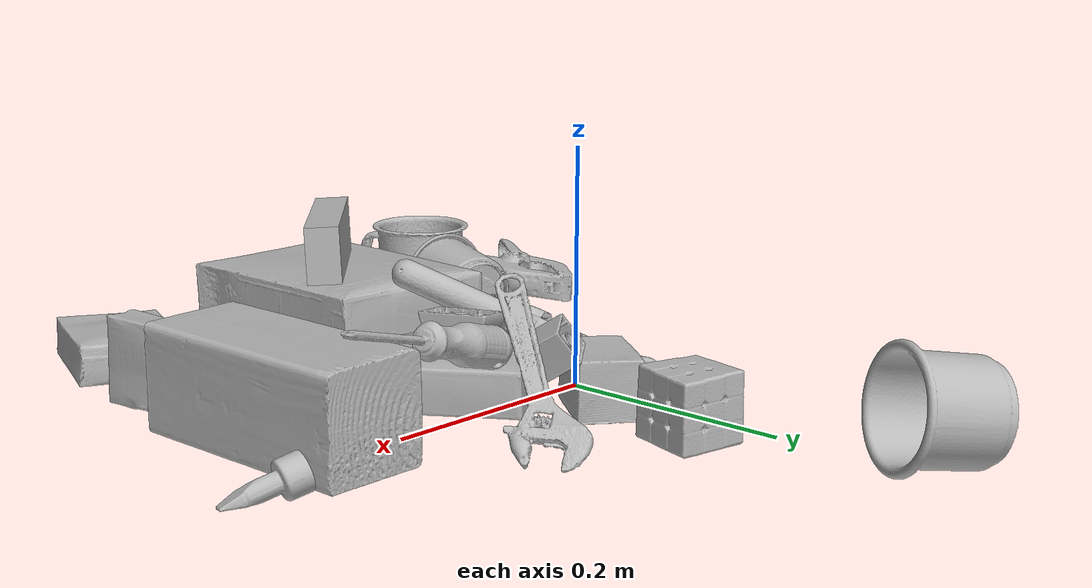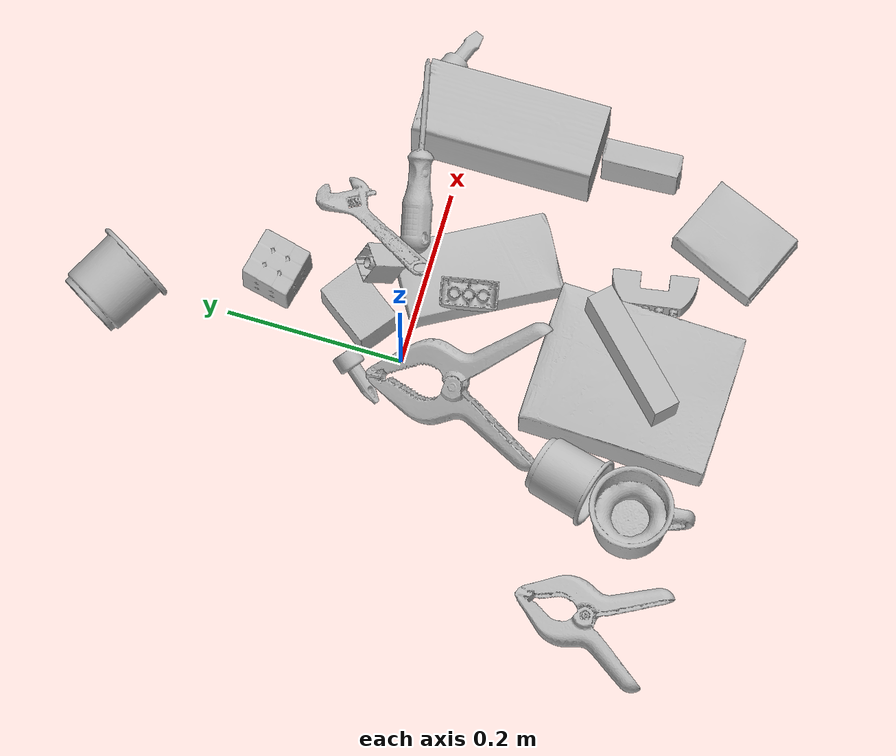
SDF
<sdf version="1.4">
  <world name="default">
    <light name="light1" type="point">
      <pose>0 0 1 0 0 0</pose>
      <diffuse>3 3 3 1</diffuse>
      <specular>3 3 3 1</specular>
    </light>
    <light name="light2" type="point">
      <pose>0 0.5 2 0 0 0</pose>
      <diffuse>1 1 1 1</diffuse>
      <specular>1 1 1 1</specular>
    </light>
    <light name="light3" type="point">
      <pose>0 0.5 2 0 0 0</pose>
      <diffuse>3 3 3 1</diffuse>
      <specular>3 3 3 1</specular>
    </light>
    <scene>
      <ambient>0.7 0.7 0.7</ambient>
    </scene>
    <model name="box21">
      <link name="link_box21">
        <collision name="default">
          <geometry>
            <mesh>
              <uri>model://cracker_box/collision_meshes/collision.obj</uri>
              <scale>1.0 1.0 1.0</scale>
            </mesh>
          </geometry>
          <surface>
            <friction>
              <ode>
                <mu>0.5</mu>
                <mu2>0.5</mu2>
              </ode>
            </friction>
          <contact>
        <ode>
            <max_vel>0</max_vel>
            <min_depth>0.0001</min_depth>
            <kp>1e8</kp>
        </ode>
    </contact></surface>
        </collision>
        <visual name="default">
          <geometry>
            <mesh>
              <uri>model://cracker_box/visual_meshes/visual.dae</uri>
              <scale>1.0 1.0 1.0</scale>
            </mesh>
          </geometry>
        </visual>
        <inertial>
          <mass>1.391977071762085</mass>
          <pose>0.0009464159375056624 0.0002543424488976598 -0.0017029533628374338 -0.000316207597302205 -0.011106489600460226 0.002546794768991959</pose>
          <inertia>
            <ixx>0.0035405685</ixx>
            <iyy>0.0058461735</iyy>
            <izz>0.008343027</izz>
            <ixy>0</ixy>
            <ixz>0</ixz>
            <iyz>0</iyz>
          </inertia>
        </inertial>
      </link>
      <pose>0.0364178903400898 -0.2528732717037201 0.03553123399615288 3.137210916732706 -0.016541570861083692 1.544701916396476</pose>
    </model>
    <model name="box22">
      <link name="link_box22">
        <collision name="default">
          <geometry>
            <mesh>
              <uri>model://pudding_box/collision_meshes/collision.obj</uri>
              <scale>1.0 1.0 1.0</scale>
            </mesh>
          </geometry>
          <surface>
            <friction>
              <ode>
                <mu>0.5</mu>
                <mu2>0.5</mu2>
              </ode>
            </friction>
          <contact>
        <ode>
            <max_vel>0</max_vel>
            <min_depth>0.0001</min_depth>
            <kp>1e8</kp>
        </ode>
    </contact></surface>
        </collision>
        <visual name="default">
          <geometry>
            <mesh>
              <uri>model://pudding_box/visual_meshes/visual.dae</uri>
              <scale>1.0 1.0 1.0</scale>
            </mesh>
          </geometry>
        </visual>
        <inertial>
          <mass>0.30066633224487305</mass>
          <pose>0.0004894821904599667 0.0008067885646596551 -0.0005188827635720372 0.005213102250656644 -0.006603798267444238 0.020079828885202117</pose>
          <inertia>
            <ixx>0.0003398878</ixx>
            <iyy>0.00022867892</iyy>
            <izz>0.00050193316</izz>
            <ixy>0</ixy>
            <ixz>0</ixz>
            <iyz>0</iyz>
          </inertia>
        </inertial>
      </link>
      <pose>0.23024065792560577 -0.318114310503006 0.01868600770831108 -3.1415926447382216 -3.580117525311339e-08 2.7326074656759833</pose>
    </model>
    <model name="box23">
      <link name="link_box23">
        <collision name="default">
          <geometry>
            <mesh>
              <uri>model://rubiks_cube/collision_meshes/collision.obj</uri>
              <scale>1.0 1.0 1.0</scale>
            </mesh>
          </geometry>
          <surface>
            <friction>
              <ode>
                <mu>0.5</mu>
                <mu2>0.5</mu2>
              </ode>
            </friction>
          <contact>
        <ode>
            <max_vel>0</max_vel>
            <min_depth>0.0001</min_depth>
            <kp>1e8</kp>
        </ode>
    </contact></surface>
        </collision>
        <visual name="default">
          <geometry>
            <mesh>
              <uri>model://rubiks_cube/visual_meshes/visual.dae</uri>
              <scale>1.0 1.0 1.0</scale>
            </mesh>
          </geometry>
        </visual>
        <inertial>
          <mass>0.26383036375045776</mass>
          <pose>2.6721041649580002e-05 5.256966323941015e-05 -7.264316082000732e-06 -0.054671492146459166 -0.0981403456898064 -0.03445706250673431</pose>
          <inertia>
            <ixx>0.000145784</ixx>
            <iyy>0.00014510413</iyy>
            <izz>0.00014699204</izz>
            <ixy>0</ixy>
            <ixz>0</ixz>
            <iyz>0</iyz>
          </inertia>
        </inertial>
      </link>
      <pose>0.05533124506473541 0.1596636027097702 0.029330067336559296 1.577613796515586 -0.0166782511139051 2.913999324307514</pose>
    </model>
    <model name="cup1">
      <link name="link_cup1">
        <collision name="default">
          <geometry>
            <mesh>
              <uri>model://i_cups/collision_meshes/collision.obj</uri>
              <scale>1.0 1.0 1.0</scale>
            </mesh>
          </geometry>
          <surface>
            <friction>
              <ode>
                <mu>0.5</mu>
                <mu2>0.5</mu2>
              </ode>
            </friction>
          <contact>
        <ode>
            <max_vel>0</max_vel>
            <min_depth>0.0001</min_depth>
            <kp>1e8</kp>
        </ode>
    </contact></surface>
        </collision>
        <visual name="default">
          <geometry>
            <mesh>
              <uri>model://i_cups/visual_meshes/visual.dae</uri>
              <scale>1.0 1.0 1.0</scale>
            </mesh>
          </geometry>
        </visual>
        <inertial>
          <mass>0.07817669957876205</mass>
          <pose>0.00011240140884183347 0.00016797371790744364 -0.0008579030982218683 -0.02898336998566683 -0.039872909189422004 -0.34590568894983</pose>
          <inertia>
            <ixx>0.000108236774</ixx>
            <iyy>0.000109190434</iyy>
            <izz>0.00012097212</izz>
            <ixy>0</ixy>
            <ixz>0</ixz>
            <iyz>0</iyz>
          </inertia>
        </inertial>
      </link>
      <pose>-0.015039605088531971 0.32671064138412476 0.04469998553395271 1.4464089825738973 -0.08497153774589762 1.037316182492207</pose>
    </model>
    <model name="cup2">
      <link name="link_cup2">
        <collision name="default">
          <geometry>
            <mesh>
              <uri>model://f_cups/collision_meshes/collision.obj</uri>
              <scale>1.0 1.0 1.0</scale>
            </mesh>
          </geometry>
          <surface>
            <friction>
              <ode>
                <mu>0.5</mu>
                <mu2>0.5</mu2>
              </ode>
            </friction>
          <contact>
        <ode>
            <max_vel>0</max_vel>
            <min_depth>0.0001</min_depth>
            <kp>1e8</kp>
        </ode>
    </contact></surface>
        </collision>
        <visual name="default">
          <geometry>
            <mesh>
              <uri>model://f_cups/visual_meshes/visual.dae</uri>
              <scale>1.0 1.0 1.0</scale>
            </mesh>
          </geometry>
        </visual>
        <inertial>
          <mass>0.06179655343294144</mass>
          <pose>-0.003171469084918499 -0.0006240077782422304 -0.0036555363330990076 0.786228783809594 -0.26079147583364887 -0.18237327348602217</pose>
          <inertia>
            <ixx>5.8090412e-05</ixx>
            <iyy>6.0937502e-05</iyy>
            <izz>6.3437656e-05</izz>
            <ixy>0</ixy>
            <ixz>0</ixz>
            <iyz>0</iyz>
          </inertia>
        </inertial>
      </link>
      <pose>-0.08426167070865631 -0.21505309641361237 0.03731009364128113 1.0155888198924117 -1.3870470915877142 0.2728729833889232</pose>
    </model>
    <model name="box11">
      <link name="link_box11">
        <collision name="default">
          <geometry>
            <mesh>
              <uri>model://jenga/collision_meshes/collision.obj</uri>
              <scale>1.0 1.0 1.0</scale>
            </mesh>
          </geometry>
          <surface>
            <friction>
              <ode>
                <mu>0.5</mu>
                <mu2>0.5</mu2>
              </ode>
            </friction>
          <contact>
        <ode>
            <max_vel>0</max_vel>
            <min_depth>0.0001</min_depth>
            <kp>1e8</kp>
        </ode>
    </contact></surface>
        </collision>
        <visual name="default">
          <geometry>
            <mesh>
              <uri>model://jenga/visual_meshes/visual.dae</uri>
              <scale>1.0 1.0 1.0</scale>
            </mesh>
          </geometry>
        </visual>
        <inertial>
          <mass>0.2841220796108246</mass>
          <pose>-2.5028555228345795e-07 -0.00010250010382151231 -4.0923401684267446e-05 0.0 -7.34215461761844e-07 0.0</pose>
          <inertia>
            <ixx>7.8623474e-05</ixx>
            <iyy>0.00053275056</iyy>
            <izz>0.0005687565</izz>
            <ixy>0</ixy>
            <ixz>0</ixz>
            <iyz>0</iyz>
          </inertia>
        </inertial>
      </link>
      <pose>0.05251577869057655 -0.24664445221424103 0.09652844071388245 1.6165520459695495 -0.008338370120488702 0.7861251758979365</pose>
    </model>
    <model name="box12">
      <link name="link_box12">
        <collision name="default">
          <geometry>
            <mesh>
              <uri>model://wood_block/collision_meshes/collision.obj</uri>
              <scale>1.0 1.0 1.0</scale>
            </mesh>
          </geometry>
          <surface>
            <friction>
              <ode>
                <mu>0.5</mu>
                <mu2>0.5</mu2>
              </ode>
            </friction>
          <contact>
        <ode>
            <max_vel>0</max_vel>
            <min_depth>0.0001</min_depth>
            <kp>1e8</kp>
        </ode>
    </contact></surface>
        </collision>
        <visual name="default">
          <geometry>
            <mesh>
              <uri>model://wood_block/visual_meshes/visual.dae</uri>
              <scale>1.0 1.0 1.0</scale>
            </mesh>
          </geometry>
        </visual>
        <inertial>
          <mass>1.792885661125183</mass>
          <pose>-5.813315510749817e-06 -0.0005708095268346369 0.0002640858292579651 -0.0522099864925601 -0.005192695938411627 -0.006861379223067069</pose>
          <inertia>
            <ixx>0.0023991528</ixx>
            <iyy>0.007578924</iyy>
            <izz>0.007550574</izz>
            <ixy>0</ixy>
            <ixz>0</ixz>
            <iyz>0</iyz>
          </inertia>
        </inertial>
      </link>
      <pose>0.278642863035202 -0.04415116459131241 0.0442773774266243 -1.5548839989984211 0.004819112781253863 1.5705666006618202</pose>
    </model>
    <model name="box13">
      <link name="link_box13">
        <collision name="default">
          <geometry>
            <mesh>
              <uri>model://sugar_box/collision_meshes/collision.obj</uri>
              <scale>1.0 1.0 1.0</scale>
            </mesh>
          </geometry>
          <surface>
            <friction>
              <ode>
                <mu>0.5</mu>
                <mu2>0.5</mu2>
              </ode>
            </friction>
          <contact>
        <ode>
            <max_vel>0</max_vel>
            <min_depth>0.0001</min_depth>
            <kp>1e8</kp>
        </ode>
    </contact></surface>
        </collision>
        <visual name="default">
          <geometry>
            <mesh>
              <uri>model://sugar_box/visual_meshes/visual.dae</uri>
              <scale>1.0 1.0 1.0</scale>
            </mesh>
          </geometry>
        </visual>
        <inertial>
          <mass>0.8825364708900452</mass>
          <pose>0.0010343727190047503 3.8491099985549226e-05 -0.00036364805418998003 -0.0004046260965456432 0.0010506635219437153 0.002615379021860657</pose>
          <inertia>
            <ixx>0.0007353271</ixx>
            <iyy>0.0023767278</iyy>
            <izz>0.002845227</izz>
            <ixy>0</ixy>
            <ixz>0</ixz>
            <iyz>0</iyz>
          </inertia>
        </inertial>
      </link>
      <pose>0.11850938200950623 -0.053908154368400574 0.022770008072257042 0.011316283970783879 -0.027268599620129133 2.078547035063261</pose>
    </model>
    <model name="box14">
      <link name="link_box14">
        <collision name="default">
          <geometry>
            <mesh>
              <uri>model://gelatin_box/collision_meshes/collision.obj</uri>
              <scale>1.0 1.0 1.0</scale>
            </mesh>
          </geometry>
          <surface>
            <friction>
              <ode>
                <mu>0.5</mu>
                <mu2>0.5</mu2>
              </ode>
            </friction>
          <contact>
        <ode>
            <max_vel>0</max_vel>
            <min_depth>0.0001</min_depth>
            <kp>1e8</kp>
        </ode>
    </contact></surface>
        </collision>
        <visual name="default">
          <geometry>
            <mesh>
              <uri>model://gelatin_box/visual_meshes/visual.dae</uri>
              <scale>1.0 1.0 1.0</scale>
            </mesh>
          </geometry>
        </visual>
        <inertial>
          <mass>0.13771659135818481</mass>
          <pose>0.0004319618456065655 0.00011156871914863586 -0.0003640321083366871 -0.0010503722043797578 -0.004755819155943452 0.016440555746729004</pose>
          <inertia>
            <ixx>9.721668e-05</ixx>
            <iyy>6.944137e-05</iyy>
            <izz>0.00014798543</izz>
            <ixy>0</ixy>
            <ixz>0</ixz>
            <iyz>0</iyz>
          </inertia>
        </inertial>
      </link>
      <pose>0.28184232115745544 -0.19557389616966248 0.03673622012138367 -0.5861787379497332 1.5473939811833437 -0.540118258072216</pose>
    </model>
    <model name="cup15">
      <link name="link_cup15">
        <collision name="default">
          <geometry>
            <mesh>
              <uri>model://mug/collision_meshes/collision.obj</uri>
              <scale>1.0 1.0 1.0</scale>
            </mesh>
          </geometry>
          <surface>
            <friction>
              <ode>
                <mu>0.5</mu>
                <mu2>0.5</mu2>
              </ode>
            </friction>
          <contact>
        <ode>
            <max_vel>0</max_vel>
            <min_depth>0.0001</min_depth>
            <kp>1e8</kp>
        </ode>
    </contact></surface>
        </collision>
        <visual name="default">
          <geometry>
            <mesh>
              <uri>model://mug/visual_meshes/visual.dae</uri>
              <scale>1.0 1.0 1.0</scale>
            </mesh>
          </geometry>
        </visual>
        <inertial>
          <mass>0.09286905825138092</mass>
          <pose>0.009571668691933155 0.0008143252343870699 -0.010947328992187977 -0.12983168029791675 0.08737751579099198 0.05507277032354666</pose>
          <inertia>
            <ixx>9.2248694e-05</ixx>
            <iyy>0.00010303637</iyy>
            <izz>0.00011916295</izz>
            <ixy>0</ixy>
            <ixz>0</ixz>
            <iyz>0</iyz>
          </inertia>
        </inertial>
      </link>
      <pose>-0.10369189083576202 -0.30416339635849 0.040948882699012756 -6.86085310992232e-06 3.50619009008367e-06 1.7473365603612878</pose>
    </model>
    <model name="toy1">
      <link name="link_toy1">
        <collision name="default">
          <geometry>
            <mesh>
              <uri>model://e_toy_airplane/collision_meshes/collision.obj</uri>
              <scale>1.0 1.0 1.0</scale>
            </mesh>
          </geometry>
          <surface>
            <friction>
              <ode>
                <mu>0.5</mu>
                <mu2>0.5</mu2>
              </ode>
            </friction>
          <contact>
        <ode>
            <max_vel>0</max_vel>
            <min_depth>0.0001</min_depth>
            <kp>1e8</kp>
        </ode>
    </contact></surface>
        </collision>
        <visual name="default">
          <geometry>
            <mesh>
              <uri>model://e_toy_airplane/visual_meshes/visual.dae</uri>
              <scale>1.0 1.0 1.0</scale>
            </mesh>
          </geometry>
        </visual>
        <inertial>
          <mass>0.023911256343126297</mass>
          <pose>0.00011740469199139625 -2.2482965505332686e-05 -0.011187205091118813 0.005518515901869279 0.009228280443904262 0.15041685177791278</pose>
          <inertia>
            <ixx>7.297989e-06</ixx>
            <iyy>7.223337e-06</iyy>
            <izz>2.1933329e-06</izz>
            <ixy>0</ixy>
            <ixz>0</ixz>
            <iyz>0</iyz>
          </inertia>
        </inertial>
      </link>
      <pose>0.3606751561164856 0.033527765423059464 0.01086979079991579 3.0028159607120166 1.3103022324889915 2.682977194376757</pose>
    </model>
    <model name="toy2">
      <link name="link_toy2">
        <collision name="default">
          <geometry>
            <mesh>
              <uri>model://e_lego_duplo/collision_meshes/collision.obj</uri>
              <scale>1.0 1.0 1.0</scale>
            </mesh>
          </geometry>
          <surface>
            <friction>
              <ode>
                <mu>0.5</mu>
                <mu2>0.5</mu2>
              </ode>
            </friction>
          <contact>
        <ode>
            <max_vel>0</max_vel>
            <min_depth>0.0001</min_depth>
            <kp>1e8</kp>
        </ode>
    </contact></surface>
        </collision>
        <visual name="default">
          <geometry>
            <mesh>
              <uri>model://e_lego_duplo/visual_meshes/visual.dae</uri>
              <scale>1.0 1.0 1.0</scale>
            </mesh>
          </geometry>
        </visual>
        <inertial>
          <mass>0.11075761169195175</mass>
          <pose>0.00032560486579313874 0.0002348541165702045 0.0019521445501595736 -0.02256776115193108 -6.825012723321977e-05 -0.007625153470106003</pose>
          <inertia>
            <ixx>2.3096625e-05</ixx>
            <iyy>9.479449e-05</iyy>
            <izz>9.231077e-05</izz>
            <ixy>0</ixy>
            <ixz>0</ixz>
            <iyz>0</iyz>
          </inertia>
        </inertial>
      </link>
      <pose>0.14810535311698914 -0.24777469038963318 0.01627941057085991 1.5786393415016227 -0.004768720810685702 -1.406983423367264</pose>
    </model>
    <model name="toy3">
      <link name="link_toy3">
        <collision name="default">
          <geometry>
            <mesh>
              <uri>model://foam_brick/collision_meshes/collision.obj</uri>
              <scale>1.0 1.0 1.0</scale>
            </mesh>
          </geometry>
          <surface>
            <friction>
              <ode>
                <mu>0.5</mu>
                <mu2>0.5</mu2>
              </ode>
            </friction>
          <contact>
        <ode>
            <max_vel>0</max_vel>
            <min_depth>0.0001</min_depth>
            <kp>1e8</kp>
        </ode>
    </contact></surface>
        </collision>
        <visual name="default">
          <geometry>
            <mesh>
              <uri>model://foam_brick/visual_meshes/visual.dae</uri>
              <scale>1.0 1.0 1.0</scale>
            </mesh>
          </geometry>
        </visual>
        <inertial>
          <mass>0.18736568093299866</mass>
          <pose>-0.0002522472059354186 0.0003458441933616996 -0.0002532101352699101 -0.2940186982087205 0.017274432871393446 -0.000744985669109422</pose>
          <inertia>
            <ixx>8.184482e-05</ixx>
            <iyy>0.00013066948</iyy>
            <izz>0.00013233014</izz>
            <ixy>0</ixy>
            <ixz>0</ixz>
            <iyz>0</iyz>
          </inertia>
        </inertial>
      </link>
      <pose>0.038966916501522064 0.05956784263253212 0.02549687772989273 3.1325113845009107 0.006610609076115338 0.9291424853441963</pose>
    </model>
    <model name="toy4">
      <link name="link_toy4">
        <collision name="default">
          <geometry>
            <mesh>
              <uri>model://b_lego_duplo/collision_meshes/collision.obj</uri>
              <scale>1.0 1.0 1.0</scale>
            </mesh>
          </geometry>
          <surface>
            <friction>
              <ode>
                <mu>0.5</mu>
                <mu2>0.5</mu2>
              </ode>
            </friction>
          <contact>
        <ode>
            <max_vel>0</max_vel>
            <min_depth>0.0001</min_depth>
            <kp>1e8</kp>
        </ode>
    </contact></surface>
        </collision>
        <visual name="default">
          <geometry>
            <mesh>
              <uri>model://b_lego_duplo/visual_meshes/visual.dae</uri>
              <scale>1.0 1.0 1.0</scale>
            </mesh>
          </geometry>
        </visual>
        <inertial>
          <mass>0.025353357195854187</mass>
          <pose>-0.00011053043272113428 -9.152237907983363e-06 0.001929429010488093 -0.03749469050897604 -0.02635423063131295 0.4518929125976256</pose>
          <inertia>
            <ixx>5.188755e-06</ixx>
            <iyy>5.223636e-06</iyy>
            <izz>4.623011e-06</izz>
            <ixy>0</ixy>
            <ixz>0</ixz>
            <iyz>0</iyz>
          </inertia>
        </inertial>
      </link>
      <pose>0.08751074224710464 0.047946829348802567 0.05577421188354492 -2.7043537696033253 0.9212306484917441 2.529452963616329</pose>
    </model>
    <model name="toy5">
      <link name="link_toy5">
        <collision name="default">
          <geometry>
            <mesh>
              <uri>model://d_toy_airplane/collision_meshes/collision.obj</uri>
              <scale>1.0 1.0 1.0</scale>
            </mesh>
          </geometry>
          <surface>
            <friction>
              <ode>
                <mu>0.5</mu>
                <mu2>0.5</mu2>
              </ode>
            </friction>
          <contact>
        <ode>
            <max_vel>0</max_vel>
            <min_depth>0.0001</min_depth>
            <kp>1e8</kp>
        </ode>
    </contact></surface>
        </collision>
        <visual name="default">
          <geometry>
            <mesh>
              <uri>model://d_toy_airplane/visual_meshes/visual.dae</uri>
              <scale>1.0 1.0 1.0</scale>
            </mesh>
          </geometry>
        </visual>
        <inertial>
          <mass>0.012228579260408878</mass>
          <pose>9.410289931111038e-05 -5.8093195548281074e-05 -0.011728097684681416 0.00026677116185868234 0.004678984415060646 0.5194210089241819</pose>
          <inertia>
            <ixx>3.6658907e-06</ixx>
            <iyy>3.6686554e-06</iyy>
            <izz>1.1067563e-06</izz>
            <ixy>0</ixy>
            <ixz>0</ixz>
            <iyz>0</iyz>
          </inertia>
        </inertial>
      </link>
      <pose>-0.03307146206498146 0.03707360848784447 0.01136132050305605 -2.301765859575989 1.24761117171831 1.757525687164289</pose>
    </model>
    <model name="toy6">
      <link name="link_toy6">
        <collision name="default">
          <geometry>
            <mesh>
              <uri>model://a_lego_duplo/collision_meshes/collision.obj</uri>
              <scale>1.0 1.0 1.0</scale>
            </mesh>
          </geometry>
          <surface>
            <friction>
              <ode>
                <mu>0.5</mu>
                <mu2>0.5</mu2>
              </ode>
            </friction>
          <contact>
        <ode>
            <max_vel>0</max_vel>
            <min_depth>0.0001</min_depth>
            <kp>1e8</kp>
        </ode>
    </contact></surface>
        </collision>
        <visual name="default">
          <geometry>
            <mesh>
              <uri>model://a_lego_duplo/visual_meshes/visual.dae</uri>
              <scale>1.0 1.0 1.0</scale>
            </mesh>
          </geometry>
        </visual>
        <inertial>
          <mass>0.012199957855045795</mass>
          <pose>-0.00011337617615936324 0.00018517585704103112 0.0003692606114782393 -0.014116995063493705 -0.0001256559143483996 6.140869386576653e-05</pose>
          <inertia>
            <ixx>1.564132e-06</ixx>
            <iyy>3.5039989e-06</iyy>
            <izz>4.340482e-06</izz>
            <ixy>0</ixy>
            <ixz>0</ixz>
            <iyz>0</iyz>
          </inertia>
        </inertial>
      </link>
      <pose>0.07949090749025345 -0.053987178951501846 0.05643202364444733 3.0657665091863127 -0.06202745348570211 1.7691709052312492</pose>
    </model>
    <model name="hardware1">
      <link name="link_hardware1">
        <collision name="default">
          <geometry>
            <mesh>
              <uri>model://phillips_screwdriver/collision_meshes/collision.obj</uri>
              <scale>1.0 1.0 1.0</scale>
            </mesh>
          </geometry>
          <surface>
            <friction>
              <ode>
                <mu>0.5</mu>
                <mu2>0.5</mu2>
              </ode>
            </friction>
          <contact>
        <ode>
            <max_vel>0</max_vel>
            <min_depth>0.0001</min_depth>
            <kp>1e8</kp>
        </ode>
    </contact></surface>
        </collision>
        <visual name="default">
          <geometry>
            <mesh>
              <uri>model://phillips_screwdriver/visual_meshes/visual.dae</uri>
              <scale>1.0 1.0 1.0</scale>
            </mesh>
          </geometry>
        </visual>
        <inertial>
          <mass>0.06495495140552521</mass>
          <pose>-0.04777183011174202 0.0010362302418798208 -0.00045555501128546894 -0.1571888451297522 0.005850998841919991 -0.0021567342335393844</pose>
          <inertia>
            <ixx>7.63154e-06</ixx>
            <iyy>9.568614e-05</iyy>
            <izz>9.576745e-05</izz>
            <ixy>0</ixy>
            <ixz>0</ixz>
            <iyz>0</iyz>
          </inertia>
        </inertial>
      </link>
      <pose>0.2067268043756485 0.03829881548881531 0.08349188417196274 2.1854993406209804 -0.27120072184157884 0.20879668271981378</pose>
    </model>
    <model name="hardware2">
      <link name="link_hardware2">
        <collision name="default">
          <geometry>
            <mesh>
              <uri>model://extra_large_clamp/collision_meshes/collision.obj</uri>
              <scale>1.0 1.0 1.0</scale>
            </mesh>
          </geometry>
          <surface>
            <friction>
              <ode>
                <mu>0.5</mu>
                <mu2>0.5</mu2>
              </ode>
            </friction>
          <contact>
        <ode>
            <max_vel>0</max_vel>
            <min_depth>0.0001</min_depth>
            <kp>1e8</kp>
        </ode>
    </contact></surface>
        </collision>
        <visual name="default">
          <geometry>
            <mesh>
              <uri>model://extra_large_clamp/visual_meshes/visual.dae</uri>
              <scale>1.0 1.0 1.0</scale>
            </mesh>
          </geometry>
        </visual>
        <inertial>
          <mass>0.19384004175662994</mass>
          <pose>0.003232018556445837 -7.61538467486389e-05 0.00031721554114483297 0.013786997874205318 -0.000506684650300538 -0.0008936209831217155</pose>
          <inertia>
            <ixx>0.00029460518</ixx>
            <iyy>0.00050721905</iyy>
            <izz>0.0007749263</izz>
            <ixy>0</ixy>
            <ixz>0</ixz>
            <iyz>0</iyz>
          </inertia>
        </inertial>
      </link>
      <pose>-0.018033446744084358 -0.06871113926172256 0.03428763896226883 -0.4224312239251825 0.2027413016867055 1.6438824802587595</pose>
    </model>
    <model name="hardware3">
      <link name="link_hardware3">
        <collision name="default">
          <geometry>
            <mesh>
              <uri>model://large_clamp/collision_meshes/collision.obj</uri>
              <scale>1.0 1.0 1.0</scale>
            </mesh>
          </geometry>
          <surface>
            <friction>
              <ode>
                <mu>0.5</mu>
                <mu2>0.5</mu2>
              </ode>
            </friction>
          <contact>
        <ode>
            <max_vel>0</max_vel>
            <min_depth>0.0001</min_depth>
            <kp>1e8</kp>
        </ode>
    </contact></surface>
        </collision>
        <visual name="default">
          <geometry>
            <mesh>
              <uri>model://large_clamp/visual_meshes/visual.dae</uri>
              <scale>1.0 1.0 1.0</scale>
            </mesh>
          </geometry>
        </visual>
        <inertial>
          <mass>0.09168914705514908</mass>
          <pose>0.006369357462972403 0.0003585686208680272 -0.0001839803735492751 -0.0021330784539622108 0.00967158945845961 0.026633182273159455</pose>
          <inertia>
            <ixx>8.0894904e-05</ixx>
            <iyy>0.00015362375</iyy>
            <izz>0.00022223631</izz>
            <ixy>0</ixy>
            <ixz>0</ixz>
            <iyz>0</iyz>
          </inertia>
        </inertial>
      </link>
      <pose>-0.22527407109737396 -0.27747654914855957 0.018513115122914314 -0.018340001999327796 0.04691927296986299 1.4635208880096873</pose>
    </model>
    <model name="hardware4">
      <link name="link_hardware4">
        <collision name="default">
          <geometry>
            <mesh>
              <uri>model://adjustable_wrench/collision_meshes/collision.obj</uri>
              <scale>1.0 1.0 1.0</scale>
            </mesh>
          </geometry>
          <surface>
            <friction>
              <ode>
                <mu>0.5</mu>
                <mu2>0.5</mu2>
              </ode>
            </friction>
          <contact>
        <ode>
            <max_vel>0</max_vel>
            <min_depth>0.0001</min_depth>
            <kp>1e8</kp>
        </ode>
    </contact></surface>
        </collision>
        <visual name="default">
          <geometry>
            <mesh>
              <uri>model://adjustable_wrench/visual_meshes/visual.dae</uri>
              <scale>1.0 1.0 1.0</scale>
            </mesh>
          </geometry>
        </visual>
        <inertial>
          <mass>0.03454793244600296</mass>
          <pose>0.03740980476140976 -0.0028968879487365484 -0.001114922808483243 -0.01447336202596381 0.006656025927011416 -0.010954184309206349</pose>
          <inertia>
            <ixx>7.0707333e-06</ixx>
            <iyy>8.275469e-05</iyy>
            <izz>8.944984e-05</izz>
            <ixy>0</ixy>
            <ixz>0</ixz>
            <iyz>0</iyz>
          </inertia>
        </inertial>
      </link>
      <pose>0.12965106964111328 0.06546258181333542 0.0501108318567276 -2.903087678529835 0.5436769397611246 0.9800325433731388</pose>
    </model>
  <physics type="ode">
      <max_contacts>50</max_contacts>
      <ode>
        <solver>
          <type>quick</type>
          <iters>75</iters>
        </solver>
        <constraints>
          <contact_max_correcting_vel>0</contact_max_correcting_vel>
          <contact_surface_layer>0</contact_surface_layer>
        </constraints>
      </ode>
    </physics></world>
</sdf>
